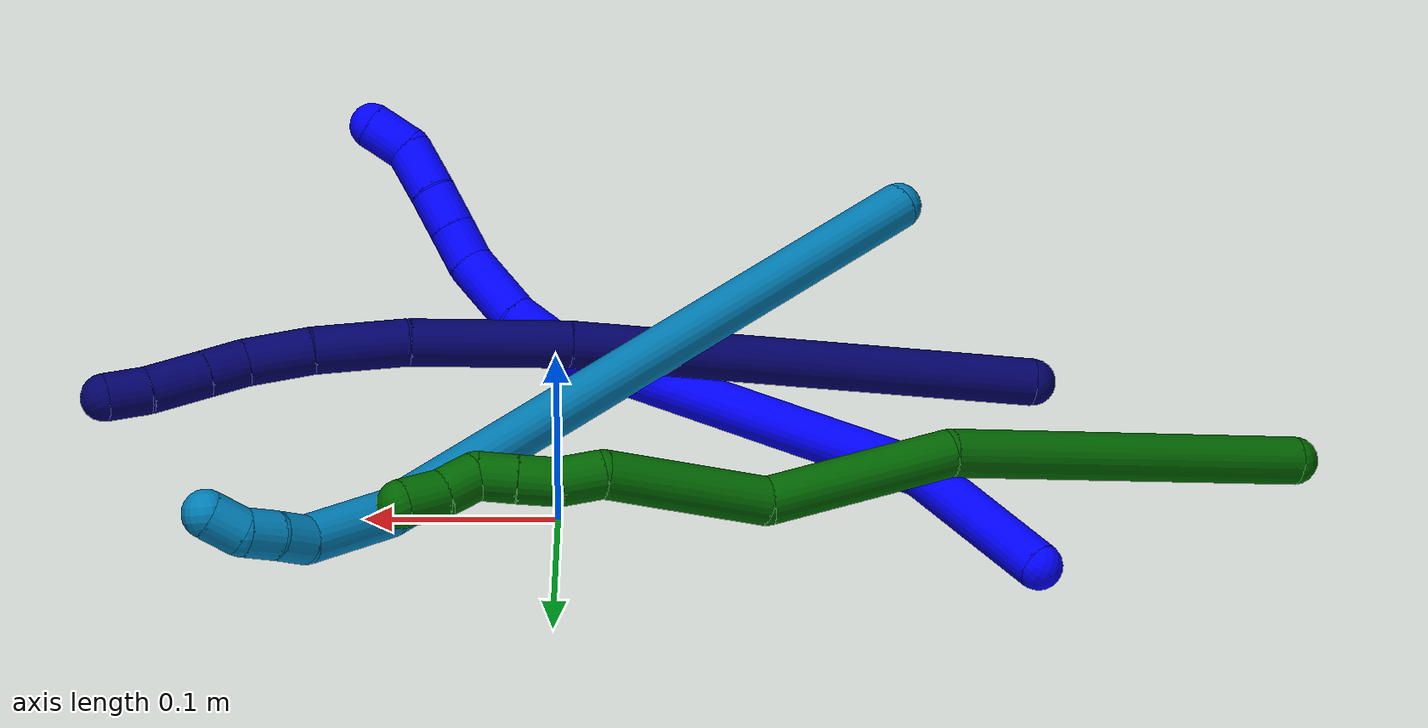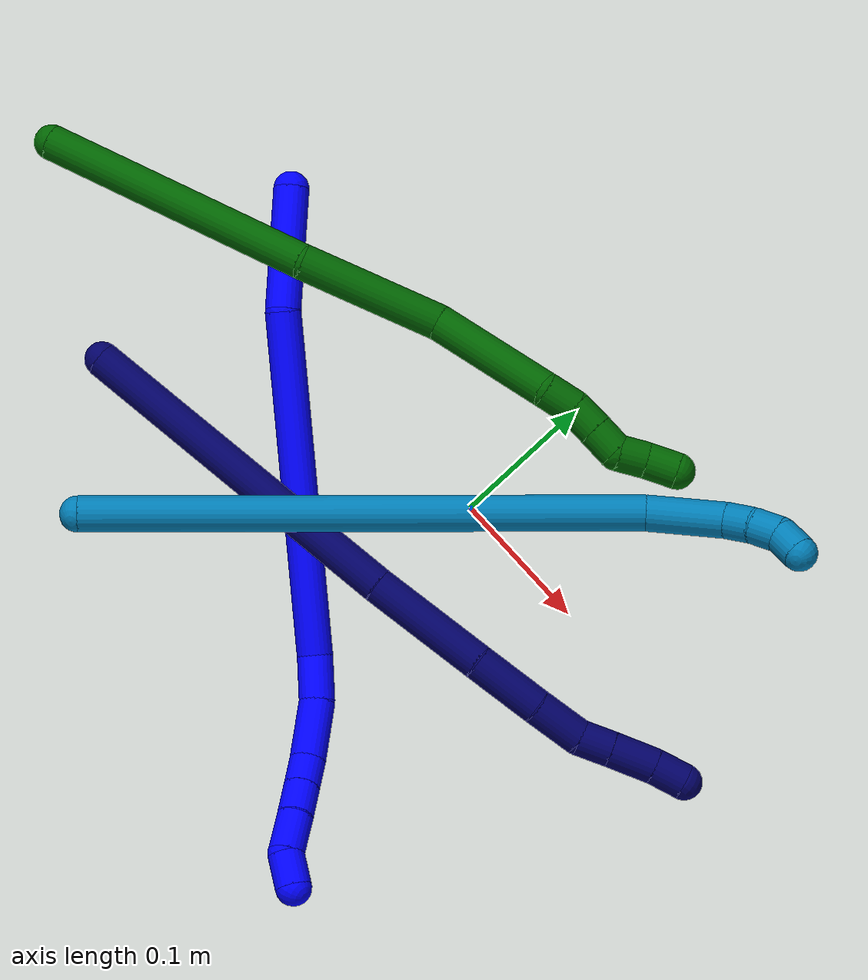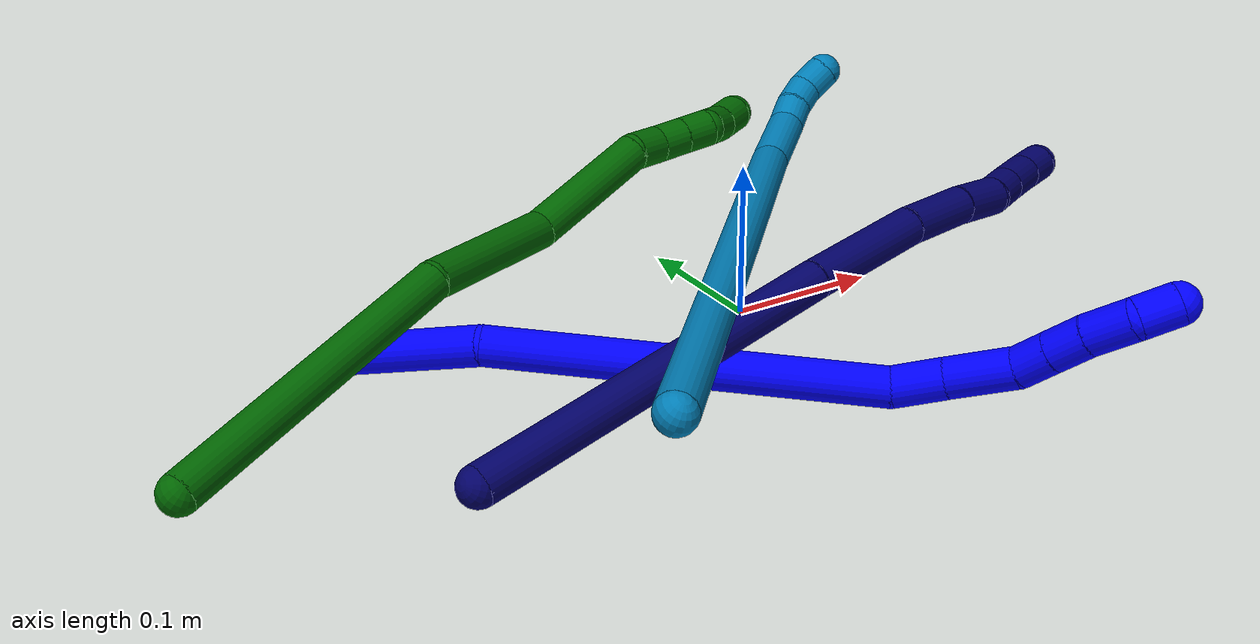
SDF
<sdf version="1.7">
 <world name="default">
  <model name="1">
   <static>0</static>
   <link name="1">
    <collision name="collision-cylinder-e_1_1_4">
     <pose>0.017141 -0.032568 0.02341 0.947561 0.403867 0.209171</pose>
     <geometry><cylinder><radius>0.0125</radius><length>0.087235</length></cylinder></geometry>
     <surface>
      <friction><ode><mu>1.16</mu><mu2>1.16</mu2><slip1>0</slip1><slip2>0</slip2></ode></friction>
      <contact><ode><kp>1e+06</kp><kd>1</kd><max_vel>0</max_vel><min_depth>0.001</min_depth></ode></contact>
     </surface>
    </collision>
    <visual name="visual-cylinder-e_1_1_4">
     <pose>0.017141 -0.032568 0.02341 0.947561 0.403867 0.209171</pose>
     <geometry><cylinder><radius>0.0125</radius><length>0.087235</length></cylinder></geometry>
     <material><ambient>0 0 1 1</ambient></material>
    </visual>
    <collision name="collision-cylinder-e_2_4_5">
     <pose>0.110646 -0.135112 0.107165 0.859164 0.690654 0.32667</pose>
     <geometry><cylinder><radius>0.0125</radius><length>0.239749</length></cylinder></geometry>
     <surface>
      <friction><ode><mu>1.16</mu><mu2>1.16</mu2><slip1>0</slip1><slip2>0</slip2></ode></friction>
      <contact><ode><kp>1e+06</kp><kd>1</kd><max_vel>0</max_vel><min_depth>0.001</min_depth></ode></contact>
     </surface>
    </collision>
    <visual name="visual-cylinder-e_2_4_5">
     <pose>0.110646 -0.135112 0.107165 0.859164 0.690654 0.32667</pose>
     <geometry><cylinder><radius>0.0125</radius><length>0.239749</length></cylinder></geometry>
     <material><ambient>0 0 1 1</ambient></material>
    </visual>
    <collision name="collision-cylinder-e_3_5_6">
     <pose>0.192903 -0.216041 0.177827 0.815344 0.373192 0.162706</pose>
     <geometry><cylinder><radius>0.0125</radius><length>0.032317</length></cylinder></geometry>
     <surface>
      <friction><ode><mu>1.16</mu><mu2>1.16</mu2><slip1>0</slip1><slip2>0</slip2></ode></friction>
      <contact><ode><kp>1e+06</kp><kd>1</kd><max_vel>0</max_vel><min_depth>0.001</min_depth></ode></contact>
     </surface>
    </collision>
    <visual name="visual-cylinder-e_3_5_6">
     <pose>0.192903 -0.216041 0.177827 0.815344 0.373192 0.162706</pose>
     <geometry><cylinder><radius>0.0125</radius><length>0.032317</length></cylinder></geometry>
     <material><ambient>0 0 1 1</ambient></material>
    </visual>
    <collision name="collision-cylinder-e_4_6_7">
     <pose>0.203812 -0.244161 0.199421 0.989507 0.239616 0.129715</pose>
     <geometry><cylinder><radius>0.0125</radius><length>0.042287</length></cylinder></geometry>
     <surface>
      <friction><ode><mu>1.16</mu><mu2>1.16</mu2><slip1>0</slip1><slip2>0</slip2></ode></friction>
      <contact><ode><kp>1e+06</kp><kd>1</kd><max_vel>0</max_vel><min_depth>0.001</min_depth></ode></contact>
     </surface>
    </collision>
    <visual name="visual-cylinder-e_4_6_7">
     <pose>0.203812 -0.244161 0.199421 0.989507 0.239616 0.129715</pose>
     <geometry><cylinder><radius>0.0125</radius><length>0.042287</length></cylinder></geometry>
     <material><ambient>0 0 1 1</ambient></material>
    </visual>
    <collision name="collision-cylinder-e_5_7_8">
     <pose>0.208047 -0.270223 0.217338 0.929741 -0.070385 -0.035311</pose>
     <geometry><cylinder><radius>0.0125</radius><length>0.022254</length></cylinder></geometry>
     <surface>
      <friction><ode><mu>1.16</mu><mu2>1.16</mu2><slip1>0</slip1><slip2>0</slip2></ode></friction>
      <contact><ode><kp>1e+06</kp><kd>1</kd><max_vel>0</max_vel><min_depth>0.001</min_depth></ode></contact>
     </surface>
    </collision>
    <visual name="visual-cylinder-e_5_7_8">
     <pose>0.208047 -0.270223 0.217338 0.929741 -0.070385 -0.035311</pose>
     <geometry><cylinder><radius>0.0125</radius><length>0.022254</length></cylinder></geometry>
     <material><ambient>0 0 1 1</ambient></material>
    </visual>
    <collision name="collision-cylinder-e_6_8_9">
     <pose>0.206502 -0.288426 0.230889 0.931917 -0.065699 -0.033049</pose>
     <geometry><cylinder><radius>0.0125</radius><length>0.023239</length></cylinder></geometry>
     <surface>
      <friction><ode><mu>1.16</mu><mu2>1.16</mu2><slip1>0</slip1><slip2>0</slip2></ode></friction>
      <contact><ode><kp>1e+06</kp><kd>1</kd><max_vel>0</max_vel><min_depth>0.001</min_depth></ode></contact>
     </surface>
    </collision>
    <visual name="visual-cylinder-e_6_8_9">
     <pose>0.206502 -0.288426 0.230889 0.931917 -0.065699 -0.033049</pose>
     <geometry><cylinder><radius>0.0125</radius><length>0.023239</length></cylinder></geometry>
     <material><ambient>0 0 1 1</ambient></material>
    </visual>
    <collision name="collision-cylinder-e_7_9_10">
     <pose>0.205889 -0.309697 0.245711 0.986689 0.01044 0.005614</pose>
     <geometry><cylinder><radius>0.0125</radius><length>0.028682</length></cylinder></geometry>
     <surface>
      <friction><ode><mu>1.16</mu><mu2>1.16</mu2><slip1>0</slip1><slip2>0</slip2></ode></friction>
      <contact><ode><kp>1e+06</kp><kd>1</kd><max_vel>0</max_vel><min_depth>0.001</min_depth></ode></contact>
     </surface>
    </collision>
    <visual name="visual-cylinder-e_7_9_10">
     <pose>0.205889 -0.309697 0.245711 0.986689 0.01044 0.005614</pose>
     <geometry><cylinder><radius>0.0125</radius><length>0.028682</length></cylinder></geometry>
     <material><ambient>0 0 1 1</ambient></material>
    </visual>
    <collision name="collision-cylinder-e_8_10_2">
     <pose>0.209588 -0.328269 0.263135 0.607081 0.297231 0.093721</pose>
     <geometry><cylinder><radius>0.0125</radius><length>0.024236</length></cylinder></geometry>
     <surface>
      <friction><ode><mu>1.16</mu><mu2>1.16</mu2><slip1>0</slip1><slip2>0</slip2></ode></friction>
      <contact><ode><kp>1e+06</kp><kd>1</kd><max_vel>0</max_vel><min_depth>0.001</min_depth></ode></contact>
     </surface>
    </collision>
    <visual name="visual-cylinder-e_8_10_2">
     <pose>0.209588 -0.328269 0.263135 0.607081 0.297231 0.093721</pose>
     <geometry><cylinder><radius>0.0125</radius><length>0.024236</length></cylinder></geometry>
     <material><ambient>0 0 1 1</ambient></material>
    </visual>
    <collision name="collision-sphere-2">
     <pose>0.213137 -0.334879 0.272652 0 -0 0</pose>
     <geometry><sphere><radius>0.0125</radius></sphere></geometry>
     <surface>
      <friction><ode><mu>1.16</mu><mu2>1.16</mu2><slip1>0</slip1><slip2>0</slip2></ode></friction>
      <contact><ode><kp>1e+06</kp><kd>1</kd><max_vel>0</max_vel><min_depth>0.001</min_depth></ode></contact>
     </surface>
    </collision>
    <visual name="visual-sphere-2">
     <pose>0.213137 -0.334879 0.272652 0 -0 0</pose>
     <geometry><sphere><radius>0.0125</radius></sphere></geometry>
     <material><ambient>0 0 1 1</ambient></material>
    </visual>
    <collision name="collision-sphere-10">
     <pose>0.206039 -0.321659 0.253619 0 -0 0</pose>
     <geometry><sphere><radius>0.0125</radius></sphere></geometry>
     <surface>
      <friction><ode><mu>1.16</mu><mu2>1.16</mu2><slip1>0</slip1><slip2>0</slip2></ode></friction>
      <contact><ode><kp>1e+06</kp><kd>1</kd><max_vel>0</max_vel><min_depth>0.001</min_depth></ode></contact>
     </surface>
    </collision>
    <visual name="visual-sphere-10">
     <pose>0.206039 -0.321659 0.253619 0 -0 0</pose>
     <geometry><sphere><radius>0.0125</radius></sphere></geometry>
     <material><ambient>0 0 1 1</ambient></material>
    </visual>
    <collision name="collision-sphere-9">
     <pose>0.205739 -0.297734 0.237803 0 -0 0</pose>
     <geometry><sphere><radius>0.0125</radius></sphere></geometry>
     <surface>
      <friction><ode><mu>1.16</mu><mu2>1.16</mu2><slip1>0</slip1><slip2>0</slip2></ode></friction>
      <contact><ode><kp>1e+06</kp><kd>1</kd><max_vel>0</max_vel><min_depth>0.001</min_depth></ode></contact>
     </surface>
    </collision>
    <visual name="visual-sphere-9">
     <pose>0.205739 -0.297734 0.237803 0 -0 0</pose>
     <geometry><sphere><radius>0.0125</radius></sphere></geometry>
     <material><ambient>0 0 1 1</ambient></material>
    </visual>
    <collision name="collision-sphere-4">
     <pose>0.034281 -0.065136 0.04682 0 -0 0</pose>
     <geometry><sphere><radius>0.0125</radius></sphere></geometry>
     <surface>
      <friction><ode><mu>1.16</mu><mu2>1.16</mu2><slip1>0</slip1><slip2>0</slip2></ode></friction>
      <contact><ode><kp>1e+06</kp><kd>1</kd><max_vel>0</max_vel><min_depth>0.001</min_depth></ode></contact>
     </surface>
    </collision>
    <visual name="visual-sphere-4">
     <pose>0.034281 -0.065136 0.04682 0 -0 0</pose>
     <geometry><sphere><radius>0.0125</radius></sphere></geometry>
     <material><ambient>0 0 1 1</ambient></material>
    </visual>
    <collision name="collision-sphere-1">
     <geometry><sphere><radius>0.0125</radius></sphere></geometry>
     <surface>
      <friction><ode><mu>1.16</mu><mu2>1.16</mu2><slip1>0</slip1><slip2>0</slip2></ode></friction>
      <contact><ode><kp>1e+06</kp><kd>1</kd><max_vel>0</max_vel><min_depth>0.001</min_depth></ode></contact>
     </surface>
    </collision>
    <visual name="visual-sphere-1">
     <geometry><sphere><radius>0.0125</radius></sphere></geometry>
     <material><ambient>0 0 1 1</ambient></material>
    </visual>
    <collision name="collision-sphere-8">
     <pose>0.207265 -0.279119 0.223976 0 -0 0</pose>
     <geometry><sphere><radius>0.0125</radius></sphere></geometry>
     <surface>
      <friction><ode><mu>1.16</mu><mu2>1.16</mu2><slip1>0</slip1><slip2>0</slip2></ode></friction>
      <contact><ode><kp>1e+06</kp><kd>1</kd><max_vel>0</max_vel><min_depth>0.001</min_depth></ode></contact>
     </surface>
    </collision>
    <visual name="visual-sphere-8">
     <pose>0.207265 -0.279119 0.223976 0 -0 0</pose>
     <geometry><sphere><radius>0.0125</radius></sphere></geometry>
     <material><ambient>0 0 1 1</ambient></material>
    </visual>
    <collision name="collision-sphere-5">
     <pose>0.187011 -0.205088 0.167511 0 -0 0</pose>
     <geometry><sphere><radius>0.0125</radius></sphere></geometry>
     <surface>
      <friction><ode><mu>1.16</mu><mu2>1.16</mu2><slip1>0</slip1><slip2>0</slip2></ode></friction>
      <contact><ode><kp>1e+06</kp><kd>1</kd><max_vel>0</max_vel><min_depth>0.001</min_depth></ode></contact>
     </surface>
    </collision>
    <visual name="visual-sphere-5">
     <pose>0.187011 -0.205088 0.167511 0 -0 0</pose>
     <geometry><sphere><radius>0.0125</radius></sphere></geometry>
     <material><ambient>0 0 1 1</ambient></material>
    </visual>
    <collision name="collision-sphere-6">
     <pose>0.198794 -0.226995 0.188143 0 -0 0</pose>
     <geometry><sphere><radius>0.0125</radius></sphere></geometry>
     <surface>
      <friction><ode><mu>1.16</mu><mu2>1.16</mu2><slip1>0</slip1><slip2>0</slip2></ode></friction>
      <contact><ode><kp>1e+06</kp><kd>1</kd><max_vel>0</max_vel><min_depth>0.001</min_depth></ode></contact>
     </surface>
    </collision>
    <visual name="visual-sphere-6">
     <pose>0.198794 -0.226995 0.188143 0 -0 0</pose>
     <geometry><sphere><radius>0.0125</radius></sphere></geometry>
     <material><ambient>0 0 1 1</ambient></material>
    </visual>
    <collision name="collision-sphere-7">
     <pose>0.20883 -0.261327 0.2107 0 -0 0</pose>
     <geometry><sphere><radius>0.0125</radius></sphere></geometry>
     <surface>
      <friction><ode><mu>1.16</mu><mu2>1.16</mu2><slip1>0</slip1><slip2>0</slip2></ode></friction>
      <contact><ode><kp>1e+06</kp><kd>1</kd><max_vel>0</max_vel><min_depth>0.001</min_depth></ode></contact>
     </surface>
    </collision>
    <visual name="visual-sphere-7">
     <pose>0.20883 -0.261327 0.2107 0 -0 0</pose>
     <geometry><sphere><radius>0.0125</radius></sphere></geometry>
     <material><ambient>0 0 1 1</ambient></material>
    </visual>
    <inertial>
     <pose>0.126578 -0.164192 0.131084 0 -0 0</pose>
     <mass>0.5</mass>
     <inertia><ixx>0.001234</ixx><ixy>0</ixy><ixz>0</ixz><iyy>0.001219</iyy><iyz>0</iyz><izz>-7e-06</izz></inertia>
    </inertial>
   </link>
   <pose>-0.246997 0.058526 0.011498 -0.453792 0.909827 -0.344468</pose>
  </model>
  <model name="6">
   <static>0</static>
   <link name="6">
    <collision name="collision-cylinder-e_1_1_4">
     <pose>0.091055 0.024762 0.034576 -0.621483 1.13385 -0.403347</pose>
     <geometry><cylinder><radius>0.0125</radius><length>0.200993</length></cylinder></geometry>
     <surface>
      <friction><ode><mu>1.16</mu><mu2>1.16</mu2><slip1>0</slip1><slip2>0</slip2></ode></friction>
      <contact><ode><kp>1e+06</kp><kd>1</kd><max_vel>0</max_vel><min_depth>0.001</min_depth></ode></contact>
     </surface>
    </collision>
    <visual name="visual-cylinder-e_1_1_4">
     <pose>0.091055 0.024762 0.034576 -0.621483 1.13385 -0.403347</pose>
     <geometry><cylinder><radius>0.0125</radius><length>0.200993</length></cylinder></geometry>
     <material><ambient>0 0.392157 0.003922 1</ambient></material>
    </visual>
    <collision name="collision-cylinder-e_2_4_5">
     <pose>0.232475 0.055529 0.074611 -0.833012 1.41102 -0.720706</pose>
     <geometry><cylinder><radius>0.0125</radius><length>0.102032</length></cylinder></geometry>
     <surface>
      <friction><ode><mu>1.16</mu><mu2>1.16</mu2><slip1>0</slip1><slip2>0</slip2></ode></friction>
      <contact><ode><kp>1e+06</kp><kd>1</kd><max_vel>0</max_vel><min_depth>0.001</min_depth></ode></contact>
     </surface>
    </collision>
    <visual name="visual-cylinder-e_2_4_5">
     <pose>0.232475 0.055529 0.074611 -0.833012 1.41102 -0.720706</pose>
     <geometry><cylinder><radius>0.0125</radius><length>0.102032</length></cylinder></geometry>
     <material><ambient>0 0.392157 0.003922 1</ambient></material>
    </visual>
    <collision name="collision-cylinder-e_3_5_6">
     <pose>0.321304 0.070367 0.101278 -0.39464 1.03238 -0.225951</pose>
     <geometry><cylinder><radius>0.0125</radius><length>0.089601</length></cylinder></geometry>
     <surface>
      <friction><ode><mu>1.16</mu><mu2>1.16</mu2><slip1>0</slip1><slip2>0</slip2></ode></friction>
      <contact><ode><kp>1e+06</kp><kd>1</kd><max_vel>0</max_vel><min_depth>0.001</min_depth></ode></contact>
     </surface>
    </collision>
    <visual name="visual-cylinder-e_3_5_6">
     <pose>0.321304 0.070367 0.101278 -0.39464 1.03238 -0.225951</pose>
     <geometry><cylinder><radius>0.0125</radius><length>0.089601</length></cylinder></geometry>
     <material><ambient>0 0.392157 0.003922 1</ambient></material>
    </visual>
    <collision name="collision-cylinder-e_4_6_7">
     <pose>0.371145 0.079097 0.124619 0.04815 1.38515 0.039952</pose>
     <geometry><cylinder><radius>0.0125</radius><length>0.023157</length></cylinder></geometry>
     <surface>
      <friction><ode><mu>1.16</mu><mu2>1.16</mu2><slip1>0</slip1><slip2>0</slip2></ode></friction>
      <contact><ode><kp>1e+06</kp><kd>1</kd><max_vel>0</max_vel><min_depth>0.001</min_depth></ode></contact>
     </surface>
    </collision>
    <visual name="visual-cylinder-e_4_6_7">
     <pose>0.371145 0.079097 0.124619 0.04815 1.38515 0.039952</pose>
     <geometry><cylinder><radius>0.0125</radius><length>0.023157</length></cylinder></geometry>
     <material><ambient>0 0.392157 0.003922 1</ambient></material>
    </visual>
    <collision name="collision-cylinder-e_5_7_8">
     <pose>0.391841 0.077797 0.131116 0.267877 1.11878 0.16833</pose>
     <geometry><cylinder><radius>0.0125</radius><length>0.020712</length></cylinder></geometry>
     <surface>
      <friction><ode><mu>1.16</mu><mu2>1.16</mu2><slip1>0</slip1><slip2>0</slip2></ode></friction>
      <contact><ode><kp>1e+06</kp><kd>1</kd><max_vel>0</max_vel><min_depth>0.001</min_depth></ode></contact>
     </surface>
    </collision>
    <visual name="visual-cylinder-e_5_7_8">
     <pose>0.391841 0.077797 0.131116 0.267877 1.11878 0.16833</pose>
     <geometry><cylinder><radius>0.0125</radius><length>0.020712</length></cylinder></geometry>
     <material><ambient>0 0.392157 0.003922 1</ambient></material>
    </visual>
    <collision name="collision-cylinder-e_6_8_9">
     <pose>0.410207 0.075253 0.139927 0.293799 1.0963 0.180194</pose>
     <geometry><cylinder><radius>0.0125</radius><length>0.020349</length></cylinder></geometry>
     <surface>
      <friction><ode><mu>1.16</mu><mu2>1.16</mu2><slip1>0</slip1><slip2>0</slip2></ode></friction>
      <contact><ode><kp>1e+06</kp><kd>1</kd><max_vel>0</max_vel><min_depth>0.001</min_depth></ode></contact>
     </surface>
    </collision>
    <visual name="visual-cylinder-e_6_8_9">
     <pose>0.410207 0.075253 0.139927 0.293799 1.0963 0.180194</pose>
     <geometry><cylinder><radius>0.0125</radius><length>0.020349</length></cylinder></geometry>
     <material><ambient>0 0.392157 0.003922 1</ambient></material>
    </visual>
    <collision name="collision-cylinder-e_7_9_10">
     <pose>0.42937 0.075566 0.143329 -2.13416 1.37912 -1.96323</pose>
     <geometry><cylinder><radius>0.0125</radius><length>0.020602</length></cylinder></geometry>
     <surface>
      <friction><ode><mu>1.16</mu><mu2>1.16</mu2><slip1>0</slip1><slip2>0</slip2></ode></friction>
      <contact><ode><kp>1e+06</kp><kd>1</kd><max_vel>0</max_vel><min_depth>0.001</min_depth></ode></contact>
     </surface>
    </collision>
    <visual name="visual-cylinder-e_7_9_10">
     <pose>0.42937 0.075566 0.143329 -2.13416 1.37912 -1.96323</pose>
     <geometry><cylinder><radius>0.0125</radius><length>0.020602</length></cylinder></geometry>
     <material><ambient>0 0.392157 0.003922 1</ambient></material>
    </visual>
    <collision name="collision-cylinder-e_8_10_2">
     <pose>0.450411 0.079742 0.143469 -1.12962 1.32142 -0.915282</pose>
     <geometry><cylinder><radius>0.0125</radius><length>0.022554</length></cylinder></geometry>
     <surface>
      <friction><ode><mu>1.16</mu><mu2>1.16</mu2><slip1>0</slip1><slip2>0</slip2></ode></friction>
      <contact><ode><kp>1e+06</kp><kd>1</kd><max_vel>0</max_vel><min_depth>0.001</min_depth></ode></contact>
     </surface>
    </collision>
    <visual name="visual-cylinder-e_8_10_2">
     <pose>0.450411 0.079742 0.143469 -1.12962 1.32142 -0.915282</pose>
     <geometry><cylinder><radius>0.0125</radius><length>0.022554</length></cylinder></geometry>
     <material><ambient>0 0.392157 0.003922 1</ambient></material>
    </visual>
    <collision name="collision-sphere-2">
     <pose>0.461339 0.082259 0.144657 0 -0 0</pose>
     <geometry><sphere><radius>0.0125</radius></sphere></geometry>
     <surface>
      <friction><ode><mu>1.16</mu><mu2>1.16</mu2><slip1>0</slip1><slip2>0</slip2></ode></friction>
      <contact><ode><kp>1e+06</kp><kd>1</kd><max_vel>0</max_vel><min_depth>0.001</min_depth></ode></contact>
     </surface>
    </collision>
    <visual name="visual-sphere-2">
     <pose>0.461339 0.082259 0.144657 0 -0 0</pose>
     <geometry><sphere><radius>0.0125</radius></sphere></geometry>
     <material><ambient>0 0.392157 0.003922 1</ambient></material>
    </visual>
    <collision name="collision-sphere-10">
     <pose>0.439483 0.077225 0.142281 0 -0 0</pose>
     <geometry><sphere><radius>0.0125</radius></sphere></geometry>
     <surface>
      <friction><ode><mu>1.16</mu><mu2>1.16</mu2><slip1>0</slip1><slip2>0</slip2></ode></friction>
      <contact><ode><kp>1e+06</kp><kd>1</kd><max_vel>0</max_vel><min_depth>0.001</min_depth></ode></contact>
     </surface>
    </collision>
    <visual name="visual-sphere-10">
     <pose>0.439483 0.077225 0.142281 0 -0 0</pose>
     <geometry><sphere><radius>0.0125</radius></sphere></geometry>
     <material><ambient>0 0.392157 0.003922 1</ambient></material>
    </visual>
    <collision name="collision-sphere-9">
     <pose>0.419258 0.073907 0.144377 0 -0 0</pose>
     <geometry><sphere><radius>0.0125</radius></sphere></geometry>
     <surface>
      <friction><ode><mu>1.16</mu><mu2>1.16</mu2><slip1>0</slip1><slip2>0</slip2></ode></friction>
      <contact><ode><kp>1e+06</kp><kd>1</kd><max_vel>0</max_vel><min_depth>0.001</min_depth></ode></contact>
     </surface>
    </collision>
    <visual name="visual-sphere-9">
     <pose>0.419258 0.073907 0.144377 0 -0 0</pose>
     <geometry><sphere><radius>0.0125</radius></sphere></geometry>
     <material><ambient>0 0.392157 0.003922 1</ambient></material>
    </visual>
    <collision name="collision-sphere-4">
     <pose>0.182109 0.049523 0.069152 0 -0 0</pose>
     <geometry><sphere><radius>0.0125</radius></sphere></geometry>
     <surface>
      <friction><ode><mu>1.16</mu><mu2>1.16</mu2><slip1>0</slip1><slip2>0</slip2></ode></friction>
      <contact><ode><kp>1e+06</kp><kd>1</kd><max_vel>0</max_vel><min_depth>0.001</min_depth></ode></contact>
     </surface>
    </collision>
    <visual name="visual-sphere-4">
     <pose>0.182109 0.049523 0.069152 0 -0 0</pose>
     <geometry><sphere><radius>0.0125</radius></sphere></geometry>
     <material><ambient>0 0.392157 0.003922 1</ambient></material>
    </visual>
    <collision name="collision-sphere-1">
     <geometry><sphere><radius>0.0125</radius></sphere></geometry>
     <surface>
      <friction><ode><mu>1.16</mu><mu2>1.16</mu2><slip1>0</slip1><slip2>0</slip2></ode></friction>
      <contact><ode><kp>1e+06</kp><kd>1</kd><max_vel>0</max_vel><min_depth>0.001</min_depth></ode></contact>
     </surface>
    </collision>
    <visual name="visual-sphere-1">
     <geometry><sphere><radius>0.0125</radius></sphere></geometry>
     <material><ambient>0 0.392157 0.003922 1</ambient></material>
    </visual>
    <collision name="collision-sphere-8">
     <pose>0.401157 0.076599 0.135478 0 -0 0</pose>
     <geometry><sphere><radius>0.0125</radius></sphere></geometry>
     <surface>
      <friction><ode><mu>1.16</mu><mu2>1.16</mu2><slip1>0</slip1><slip2>0</slip2></ode></friction>
      <contact><ode><kp>1e+06</kp><kd>1</kd><max_vel>0</max_vel><min_depth>0.001</min_depth></ode></contact>
     </surface>
    </collision>
    <visual name="visual-sphere-8">
     <pose>0.401157 0.076599 0.135478 0 -0 0</pose>
     <geometry><sphere><radius>0.0125</radius></sphere></geometry>
     <material><ambient>0 0.392157 0.003922 1</ambient></material>
    </visual>
    <collision name="collision-sphere-5">
     <pose>0.282841 0.061535 0.080071 0 -0 0</pose>
     <geometry><sphere><radius>0.0125</radius></sphere></geometry>
     <surface>
      <friction><ode><mu>1.16</mu><mu2>1.16</mu2><slip1>0</slip1><slip2>0</slip2></ode></friction>
      <contact><ode><kp>1e+06</kp><kd>1</kd><max_vel>0</max_vel><min_depth>0.001</min_depth></ode></contact>
     </surface>
    </collision>
    <visual name="visual-sphere-5">
     <pose>0.282841 0.061535 0.080071 0 -0 0</pose>
     <geometry><sphere><radius>0.0125</radius></sphere></geometry>
     <material><ambient>0 0.392157 0.003922 1</ambient></material>
    </visual>
    <collision name="collision-sphere-6">
     <pose>0.359766 0.0792 0.122484 0 -0 0</pose>
     <geometry><sphere><radius>0.0125</radius></sphere></geometry>
     <surface>
      <friction><ode><mu>1.16</mu><mu2>1.16</mu2><slip1>0</slip1><slip2>0</slip2></ode></friction>
      <contact><ode><kp>1e+06</kp><kd>1</kd><max_vel>0</max_vel><min_depth>0.001</min_depth></ode></contact>
     </surface>
    </collision>
    <visual name="visual-sphere-6">
     <pose>0.359766 0.0792 0.122484 0 -0 0</pose>
     <geometry><sphere><radius>0.0125</radius></sphere></geometry>
     <material><ambient>0 0.392157 0.003922 1</ambient></material>
    </visual>
    <collision name="collision-sphere-7">
     <pose>0.382525 0.078994 0.126754 0 -0 0</pose>
     <geometry><sphere><radius>0.0125</radius></sphere></geometry>
     <surface>
      <friction><ode><mu>1.16</mu><mu2>1.16</mu2><slip1>0</slip1><slip2>0</slip2></ode></friction>
      <contact><ode><kp>1e+06</kp><kd>1</kd><max_vel>0</max_vel><min_depth>0.001</min_depth></ode></contact>
     </surface>
    </collision>
    <visual name="visual-sphere-7">
     <pose>0.382525 0.078994 0.126754 0 -0 0</pose>
     <geometry><sphere><radius>0.0125</radius></sphere></geometry>
     <material><ambient>0 0.392157 0.003922 1</ambient></material>
    </visual>
    <inertial>
     <pose>0.229745 0.050554 0.076549 0 -0 0</pose>
     <mass>0.5</mass>
     <inertia>
      <ixx>0.000216</ixx>
      <ixy>0</ixy>
      <ixz>0</ixz>
      <iyy>0.00069</iyy>
      <iyz>0</iyz>
      <izz>-0.000955</izz>
     </inertia>
    </inertial>
   </link>
   <pose>-0.383113 -0.041685 0.01179 0.637439 0.190476 0.378209</pose>
  </model>
  <model name="7">
   <static>0</static>
   <link name="7">
    <collision name="collision-cylinder-e_1_1_4">
     <pose>0.05371 -0.051853 0.100775 0.475216 0.44256 0.108857</pose>
     <geometry><cylinder><radius>0.0125</radius><length>0.250832</length></cylinder></geometry>
     <surface>
      <friction><ode><mu>1.16</mu><mu2>1.16</mu2><slip1>0</slip1><slip2>0</slip2></ode></friction>
      <contact><ode><kp>1e+06</kp><kd>1</kd><max_vel>0</max_vel><min_depth>0.001</min_depth></ode></contact>
     </surface>
    </collision>
    <visual name="visual-cylinder-e_1_1_4">
     <pose>0.05371 -0.051853 0.100775 0.475216 0.44256 0.108857</pose>
     <geometry><cylinder><radius>0.0125</radius><length>0.250832</length></cylinder></geometry>
     <material><ambient>0.003922 0 0.403922 1</ambient></material>
    </visual>
    <collision name="collision-cylinder-e_2_4_5">
     <pose>0.12334 -0.12072 0.237374 0.443375 0.381736 0.087046</pose>
     <geometry><cylinder><radius>0.0125</radius><length>0.08547</length></cylinder></geometry>
     <surface>
      <friction><ode><mu>1.16</mu><mu2>1.16</mu2><slip1>0</slip1><slip2>0</slip2></ode></friction>
      <contact><ode><kp>1e+06</kp><kd>1</kd><max_vel>0</max_vel><min_depth>0.001</min_depth></ode></contact>
     </surface>
    </collision>
    <visual name="visual-cylinder-e_2_4_5">
     <pose>0.12334 -0.12072 0.237374 0.443375 0.381736 0.087046</pose>
     <geometry><cylinder><radius>0.0125</radius><length>0.08547</length></cylinder></geometry>
     <material><ambient>0.003922 0 0.403922 1</ambient></material>
    </visual>
    <collision name="collision-cylinder-e_3_5_6">
     <pose>0.146879 -0.145893 0.295555 0.349954 0.30982 0.0552</pose>
     <geometry><cylinder><radius>0.0125</radius><length>0.049976</length></cylinder></geometry>
     <surface>
      <friction><ode><mu>1.16</mu><mu2>1.16</mu2><slip1>0</slip1><slip2>0</slip2></ode></friction>
      <contact><ode><kp>1e+06</kp><kd>1</kd><max_vel>0</max_vel><min_depth>0.001</min_depth></ode></contact>
     </surface>
    </collision>
    <visual name="visual-cylinder-e_3_5_6">
     <pose>0.146879 -0.145893 0.295555 0.349954 0.30982 0.0552</pose>
     <geometry><cylinder><radius>0.0125</radius><length>0.049976</length></cylinder></geometry>
     <material><ambient>0.003922 0 0.403922 1</ambient></material>
    </visual>
    <collision name="collision-cylinder-e_4_6_7">
     <pose>0.158681 -0.15887 0.33459 0.281199 0.236494 0.033625</pose>
     <geometry><cylinder><radius>0.0125</radius><length>0.035718</length></cylinder></geometry>
     <surface>
      <friction><ode><mu>1.16</mu><mu2>1.16</mu2><slip1>0</slip1><slip2>0</slip2></ode></friction>
      <contact><ode><kp>1e+06</kp><kd>1</kd><max_vel>0</max_vel><min_depth>0.001</min_depth></ode></contact>
     </surface>
    </collision>
    <visual name="visual-cylinder-e_4_6_7">
     <pose>0.158681 -0.15887 0.33459 0.281199 0.236494 0.033625</pose>
     <geometry><cylinder><radius>0.0125</radius><length>0.035718</length></cylinder></geometry>
     <material><ambient>0.003922 0 0.403922 1</ambient></material>
    </visual>
    <collision name="collision-cylinder-e_5_7_8">
     <pose>0.163547 -0.169278 0.36139 0.504659 0.058887 0.015187</pose>
     <geometry><cylinder><radius>0.0125</radius><length>0.023163</length></cylinder></geometry>
     <surface>
      <friction><ode><mu>1.16</mu><mu2>1.16</mu2><slip1>0</slip1><slip2>0</slip2></ode></friction>
      <contact><ode><kp>1e+06</kp><kd>1</kd><max_vel>0</max_vel><min_depth>0.001</min_depth></ode></contact>
     </surface>
    </collision>
    <visual name="visual-cylinder-e_5_7_8">
     <pose>0.163547 -0.169278 0.36139 0.504659 0.058887 0.015187</pose>
     <geometry><cylinder><radius>0.0125</radius><length>0.023163</length></cylinder></geometry>
     <material><ambient>0.003922 0 0.403922 1</ambient></material>
    </visual>
    <collision name="collision-cylinder-e_6_8_9">
     <pose>0.165311 -0.182265 0.385578 0.484089 0.067971 0.016787</pose>
     <geometry><cylinder><radius>0.0125</radius><length>0.031863</length></cylinder></geometry>
     <surface>
      <friction><ode><mu>1.16</mu><mu2>1.16</mu2><slip1>0</slip1><slip2>0</slip2></ode></friction>
      <contact><ode><kp>1e+06</kp><kd>1</kd><max_vel>0</max_vel><min_depth>0.001</min_depth></ode></contact>
     </surface>
    </collision>
    <visual name="visual-cylinder-e_6_8_9">
     <pose>0.165311 -0.182265 0.385578 0.484089 0.067971 0.016787</pose>
     <geometry><cylinder><radius>0.0125</radius><length>0.031863</length></cylinder></geometry>
     <material><ambient>0.003922 0 0.403922 1</ambient></material>
    </visual>
    <collision name="collision-cylinder-e_7_9_2">
     <pose>0.168586 -0.194785 0.409695 0.471467 0.192027 0.046259</pose>
     <geometry><cylinder><radius>0.0125</radius><length>0.022979</length></cylinder></geometry>
     <surface>
      <friction><ode><mu>1.16</mu><mu2>1.16</mu2><slip1>0</slip1><slip2>0</slip2></ode></friction>
      <contact><ode><kp>1e+06</kp><kd>1</kd><max_vel>0</max_vel><min_depth>0.001</min_depth></ode></contact>
     </surface>
    </collision>
    <visual name="visual-cylinder-e_7_9_2">
     <pose>0.168586 -0.194785 0.409695 0.471467 0.192027 0.046259</pose>
     <geometry><cylinder><radius>0.0125</radius><length>0.022979</length></cylinder></geometry>
     <material><ambient>0.003922 0 0.403922 1</ambient></material>
    </visual>
    <collision name="collision-sphere-2">
     <pose>0.170778 -0.199908 0.419743 0 -0 0</pose>
     <geometry><sphere><radius>0.0125</radius></sphere></geometry>
     <surface>
      <friction><ode><mu>1.16</mu><mu2>1.16</mu2><slip1>0</slip1><slip2>0</slip2></ode></friction>
      <contact><ode><kp>1e+06</kp><kd>1</kd><max_vel>0</max_vel><min_depth>0.001</min_depth></ode></contact>
     </surface>
    </collision>
    <visual name="visual-sphere-2">
     <pose>0.170778 -0.199908 0.419743 0 -0 0</pose>
     <geometry><sphere><radius>0.0125</radius></sphere></geometry>
     <material><ambient>0.003922 0 0.403922 1</ambient></material>
    </visual>
    <collision name="collision-sphere-9">
     <pose>0.166393 -0.189663 0.399647 0 -0 0</pose>
     <geometry><sphere><radius>0.0125</radius></sphere></geometry>
     <surface>
      <friction><ode><mu>1.16</mu><mu2>1.16</mu2><slip1>0</slip1><slip2>0</slip2></ode></friction>
      <contact><ode><kp>1e+06</kp><kd>1</kd><max_vel>0</max_vel><min_depth>0.001</min_depth></ode></contact>
     </surface>
    </collision>
    <visual name="visual-sphere-9">
     <pose>0.166393 -0.189663 0.399647 0 -0 0</pose>
     <geometry><sphere><radius>0.0125</radius></sphere></geometry>
     <material><ambient>0.003922 0 0.403922 1</ambient></material>
    </visual>
    <collision name="collision-sphere-4">
     <pose>0.10742 -0.103707 0.20155 0 -0 0</pose>
     <geometry><sphere><radius>0.0125</radius></sphere></geometry>
     <surface>
      <friction><ode><mu>1.16</mu><mu2>1.16</mu2><slip1>0</slip1><slip2>0</slip2></ode></friction>
      <contact><ode><kp>1e+06</kp><kd>1</kd><max_vel>0</max_vel><min_depth>0.001</min_depth></ode></contact>
     </surface>
    </collision>
    <visual name="visual-sphere-4">
     <pose>0.10742 -0.103707 0.20155 0 -0 0</pose>
     <geometry><sphere><radius>0.0125</radius></sphere></geometry>
     <material><ambient>0.003922 0 0.403922 1</ambient></material>
    </visual>
    <collision name="collision-sphere-1">
     <geometry><sphere><radius>0.0125</radius></sphere></geometry>
     <surface>
      <friction><ode><mu>1.16</mu><mu2>1.16</mu2><slip1>0</slip1><slip2>0</slip2></ode></friction>
      <contact><ode><kp>1e+06</kp><kd>1</kd><max_vel>0</max_vel><min_depth>0.001</min_depth></ode></contact>
     </surface>
    </collision>
    <visual name="visual-sphere-1">
     <geometry><sphere><radius>0.0125</radius></sphere></geometry>
     <material><ambient>0.003922 0 0.403922 1</ambient></material>
    </visual>
    <collision name="collision-sphere-8">
     <pose>0.164229 -0.174868 0.37151 0 -0 0</pose>
     <geometry><sphere><radius>0.0125</radius></sphere></geometry>
     <surface>
      <friction><ode><mu>1.16</mu><mu2>1.16</mu2><slip1>0</slip1><slip2>0</slip2></ode></friction>
      <contact><ode><kp>1e+06</kp><kd>1</kd><max_vel>0</max_vel><min_depth>0.001</min_depth></ode></contact>
     </surface>
    </collision>
    <visual name="visual-sphere-8">
     <pose>0.164229 -0.174868 0.37151 0 -0 0</pose>
     <geometry><sphere><radius>0.0125</radius></sphere></geometry>
     <material><ambient>0.003922 0 0.403922 1</ambient></material>
    </visual>
    <collision name="collision-sphere-5">
     <pose>0.13926 -0.137733 0.273199 0 -0 0</pose>
     <geometry><sphere><radius>0.0125</radius></sphere></geometry>
     <surface>
      <friction><ode><mu>1.16</mu><mu2>1.16</mu2><slip1>0</slip1><slip2>0</slip2></ode></friction>
      <contact><ode><kp>1e+06</kp><kd>1</kd><max_vel>0</max_vel><min_depth>0.001</min_depth></ode></contact>
     </surface>
    </collision>
    <visual name="visual-sphere-5">
     <pose>0.13926 -0.137733 0.273199 0 -0 0</pose>
     <geometry><sphere><radius>0.0125</radius></sphere></geometry>
     <material><ambient>0.003922 0 0.403922 1</ambient></material>
    </visual>
    <collision name="collision-sphere-6">
     <pose>0.154497 -0.154052 0.31791 0 -0 0</pose>
     <geometry><sphere><radius>0.0125</radius></sphere></geometry>
     <surface>
      <friction><ode><mu>1.16</mu><mu2>1.16</mu2><slip1>0</slip1><slip2>0</slip2></ode></friction>
      <contact><ode><kp>1e+06</kp><kd>1</kd><max_vel>0</max_vel><min_depth>0.001</min_depth></ode></contact>
     </surface>
    </collision>
    <visual name="visual-sphere-6">
     <pose>0.154497 -0.154052 0.31791 0 -0 0</pose>
     <geometry><sphere><radius>0.0125</radius></sphere></geometry>
     <material><ambient>0.003922 0 0.403922 1</ambient></material>
    </visual>
    <collision name="collision-sphere-7">
     <pose>0.162866 -0.163688 0.35127 0 -0 0</pose>
     <geometry><sphere><radius>0.0125</radius></sphere></geometry>
     <surface>
      <friction><ode><mu>1.16</mu><mu2>1.16</mu2><slip1>0</slip1><slip2>0</slip2></ode></friction>
      <contact><ode><kp>1e+06</kp><kd>1</kd><max_vel>0</max_vel><min_depth>0.001</min_depth></ode></contact>
     </surface>
    </collision>
    <visual name="visual-sphere-7">
     <pose>0.162866 -0.163688 0.35127 0 -0 0</pose>
     <geometry><sphere><radius>0.0125</radius></sphere></geometry>
     <material><ambient>0.003922 0 0.403922 1</ambient></material>
    </visual>
    <inertial>
     <pose>0.099903 -0.100989 0.204716 0 -0 0</pose>
     <mass>0.5</mass>
     <inertia>
      <ixx>0.001415</ixx>
      <ixy>0</ixy>
      <ixz>0</ixz>
      <iyy>0.001393</iyy>
      <iyz>0</iyz>
      <izz>1.8e-05</izz>
     </inertia>
    </inertial>
   </link>
   <pose>-0.248785 -0.117883 0.011584 -2.1596 -0.648107 -1.00359</pose>
  </model>
  <model name="9">
   <static>0</static>
   <link name="9">
    <collision name="collision-cylinder-e_1_1_4">
     <pose>0.141288 0.114331 -0.063465 -2.07755 0.824061 -1.27733</pose>
     <geometry><cylinder><radius>0.0125</radius><length>0.385028</length></cylinder></geometry>
     <surface>
      <friction><ode><mu>1.16</mu><mu2>1.16</mu2><slip1>0</slip1><slip2>0</slip2></ode></friction>
      <contact><ode><kp>1e+06</kp><kd>1</kd><max_vel>0</max_vel><min_depth>0.001</min_depth></ode></contact>
     </surface>
    </collision>
    <visual name="visual-cylinder-e_1_1_4">
     <pose>0.141288 0.114331 -0.063465 -2.07755 0.824061 -1.27733</pose>
     <geometry><cylinder><radius>0.0125</radius><length>0.385028</length></cylinder></geometry>
     <material><ambient>0 0.490196 0.709804 1</ambient></material>
    </visual>
    <collision name="collision-cylinder-e_2_4_5">
     <pose>0.303842 0.245613 -0.13077 -1.79354 0.885601 -1.07144</pose>
     <geometry><cylinder><radius>0.0125</radius><length>0.05493</length></cylinder></geometry>
     <surface>
      <friction><ode><mu>1.16</mu><mu2>1.16</mu2><slip1>0</slip1><slip2>0</slip2></ode></friction>
      <contact><ode><kp>1e+06</kp><kd>1</kd><max_vel>0</max_vel><min_depth>0.001</min_depth></ode></contact>
     </surface>
    </collision>
    <visual name="visual-cylinder-e_2_4_5">
     <pose>0.303842 0.245613 -0.13077 -1.79354 0.885601 -1.07144</pose>
     <geometry><cylinder><radius>0.0125</radius><length>0.05493</length></cylinder></geometry>
     <material><ambient>0 0.490196 0.709804 1</ambient></material>
    </visual>
    <collision name="collision-cylinder-e_3_5_6">
     <pose>0.33229 0.26918 -0.132433 -1.253 0.800662 -0.594426</pose>
     <geometry><cylinder><radius>0.0125</radius><length>0.020008</length></cylinder></geometry>
     <surface>
      <friction><ode><mu>1.16</mu><mu2>1.16</mu2><slip1>0</slip1><slip2>0</slip2></ode></friction>
      <contact><ode><kp>1e+06</kp><kd>1</kd><max_vel>0</max_vel><min_depth>0.001</min_depth></ode></contact>
     </surface>
    </collision>
    <visual name="visual-cylinder-e_3_5_6">
     <pose>0.33229 0.26918 -0.132433 -1.253 0.800662 -0.594426</pose>
     <geometry><cylinder><radius>0.0125</radius><length>0.020008</length></cylinder></geometry>
     <material><ambient>0 0.490196 0.709804 1</ambient></material>
    </visual>
    <collision name="collision-cylinder-e_4_6_7">
     <pose>0.347669 0.281194 -0.128337 -1.22906 0.960944 -0.704905</pose>
     <geometry><cylinder><radius>0.0125</radius><length>0.020003</length></cylinder></geometry>
     <surface>
      <friction><ode><mu>1.16</mu><mu2>1.16</mu2><slip1>0</slip1><slip2>0</slip2></ode></friction>
      <contact><ode><kp>1e+06</kp><kd>1</kd><max_vel>0</max_vel><min_depth>0.001</min_depth></ode></contact>
     </surface>
    </collision>
    <visual name="visual-cylinder-e_4_6_7">
     <pose>0.347669 0.281194 -0.128337 -1.22906 0.960944 -0.704905</pose>
     <geometry><cylinder><radius>0.0125</radius><length>0.020003</length></cylinder></geometry>
     <material><ambient>0 0.490196 0.709804 1</ambient></material>
    </visual>
    <collision name="collision-cylinder-e_5_7_2">
     <pose>0.363908 0.289123 -0.12101 -0.437965 0.932046 -0.222946</pose>
     <geometry><cylinder><radius>0.0125</radius><length>0.020031</length></cylinder></geometry>
     <surface>
      <friction><ode><mu>1.16</mu><mu2>1.16</mu2><slip1>0</slip1><slip2>0</slip2></ode></friction>
      <contact><ode><kp>1e+06</kp><kd>1</kd><max_vel>0</max_vel><min_depth>0.001</min_depth></ode></contact>
     </surface>
    </collision>
    <visual name="visual-cylinder-e_5_7_2">
     <pose>0.363908 0.289123 -0.12101 -0.437965 0.932046 -0.222946</pose>
     <geometry><cylinder><radius>0.0125</radius><length>0.020031</length></cylinder></geometry>
     <material><ambient>0 0.490196 0.709804 1</ambient></material>
    </visual>
    <collision name="collision-sphere-2">
     <pose>0.371949 0.291655 -0.115602 0 -0 0</pose>
     <geometry><sphere><radius>0.0125</radius></sphere></geometry>
     <surface>
      <friction><ode><mu>1.16</mu><mu2>1.16</mu2><slip1>0</slip1><slip2>0</slip2></ode></friction>
      <contact><ode><kp>1e+06</kp><kd>1</kd><max_vel>0</max_vel><min_depth>0.001</min_depth></ode></contact>
     </surface>
    </collision>
    <visual name="visual-sphere-2">
     <pose>0.371949 0.291655 -0.115602 0 -0 0</pose>
     <geometry><sphere><radius>0.0125</radius></sphere></geometry>
     <material><ambient>0 0.490196 0.709804 1</ambient></material>
    </visual>
    <collision name="collision-sphere-7">
     <pose>0.355867 0.286591 -0.126417 0 -0 0</pose>
     <geometry><sphere><radius>0.0125</radius></sphere></geometry>
     <surface>
      <friction><ode><mu>1.16</mu><mu2>1.16</mu2><slip1>0</slip1><slip2>0</slip2></ode></friction>
      <contact><ode><kp>1e+06</kp><kd>1</kd><max_vel>0</max_vel><min_depth>0.001</min_depth></ode></contact>
     </surface>
    </collision>
    <visual name="visual-sphere-7">
     <pose>0.355867 0.286591 -0.126417 0 -0 0</pose>
     <geometry><sphere><radius>0.0125</radius></sphere></geometry>
     <material><ambient>0 0.490196 0.709804 1</ambient></material>
    </visual>
    <collision name="collision-sphere-6">
     <pose>0.339471 0.275797 -0.130256 0 -0 0</pose>
     <geometry><sphere><radius>0.0125</radius></sphere></geometry>
     <surface>
      <friction><ode><mu>1.16</mu><mu2>1.16</mu2><slip1>0</slip1><slip2>0</slip2></ode></friction>
      <contact><ode><kp>1e+06</kp><kd>1</kd><max_vel>0</max_vel><min_depth>0.001</min_depth></ode></contact>
     </surface>
    </collision>
    <visual name="visual-sphere-6">
     <pose>0.339471 0.275797 -0.130256 0 -0 0</pose>
     <geometry><sphere><radius>0.0125</radius></sphere></geometry>
     <material><ambient>0 0.490196 0.709804 1</ambient></material>
    </visual>
    <collision name="collision-sphere-5">
     <pose>0.325108 0.262564 -0.134609 0 -0 0</pose>
     <geometry><sphere><radius>0.0125</radius></sphere></geometry>
     <surface>
      <friction><ode><mu>1.16</mu><mu2>1.16</mu2><slip1>0</slip1><slip2>0</slip2></ode></friction>
      <contact><ode><kp>1e+06</kp><kd>1</kd><max_vel>0</max_vel><min_depth>0.001</min_depth></ode></contact>
     </surface>
    </collision>
    <visual name="visual-sphere-5">
     <pose>0.325108 0.262564 -0.134609 0 -0 0</pose>
     <geometry><sphere><radius>0.0125</radius></sphere></geometry>
     <material><ambient>0 0.490196 0.709804 1</ambient></material>
    </visual>
    <collision name="collision-sphere-1">
     <geometry><sphere><radius>0.0125</radius></sphere></geometry>
     <surface>
      <friction><ode><mu>1.16</mu><mu2>1.16</mu2><slip1>0</slip1><slip2>0</slip2></ode></friction>
      <contact><ode><kp>1e+06</kp><kd>1</kd><max_vel>0</max_vel><min_depth>0.001</min_depth></ode></contact>
     </surface>
    </collision>
    <visual name="visual-sphere-1">
     <geometry><sphere><radius>0.0125</radius></sphere></geometry>
     <material><ambient>0 0.490196 0.709804 1</ambient></material>
    </visual>
    <collision name="collision-sphere-4">
     <pose>0.282576 0.228662 -0.12693 0 -0 0</pose>
     <geometry><sphere><radius>0.0125</radius></sphere></geometry>
     <surface>
      <friction><ode><mu>1.16</mu><mu2>1.16</mu2><slip1>0</slip1><slip2>0</slip2></ode></friction>
      <contact><ode><kp>1e+06</kp><kd>1</kd><max_vel>0</max_vel><min_depth>0.001</min_depth></ode></contact>
     </surface>
    </collision>
    <visual name="visual-sphere-4">
     <pose>0.282576 0.228662 -0.12693 0 -0 0</pose>
     <geometry><sphere><radius>0.0125</radius></sphere></geometry>
     <material><ambient>0 0.490196 0.709804 1</ambient></material>
    </visual>
    <inertial>
     <pose>0.183964 0.148628 -0.07852 0 -0 0</pose>
     <mass>0.5</mass>
     <inertia>
      <ixx>-0.002139</ixx>
      <ixy>0</ixy>
      <ixz>0</ixz>
      <iyy>-0.000817</iyy>
      <iyz>0</iyz>
      <izz>-0.006372</izz>
     </inertia>
    </inertial>
   </link>
   <pose>-0.178046 -0.198355 0.07185 0.52799 0.064524 0.080994</pose>
  </model>
 </world>
</sdf>
